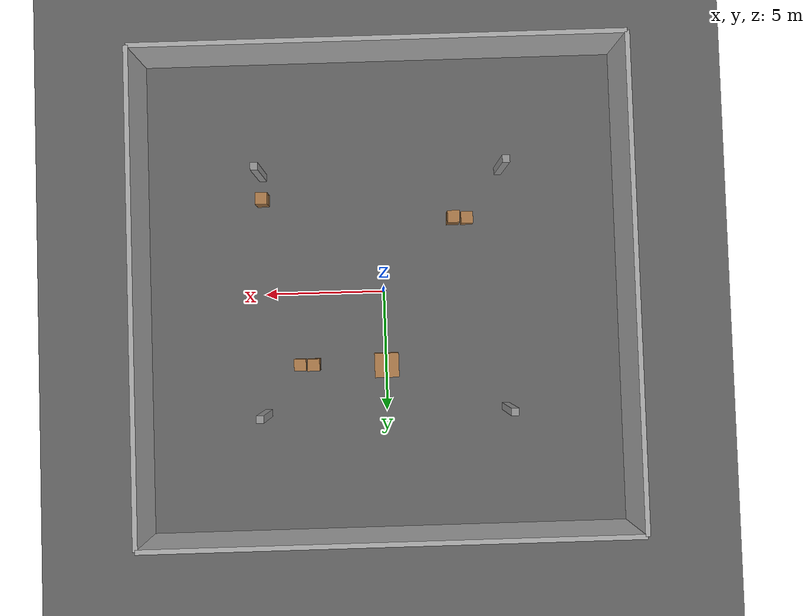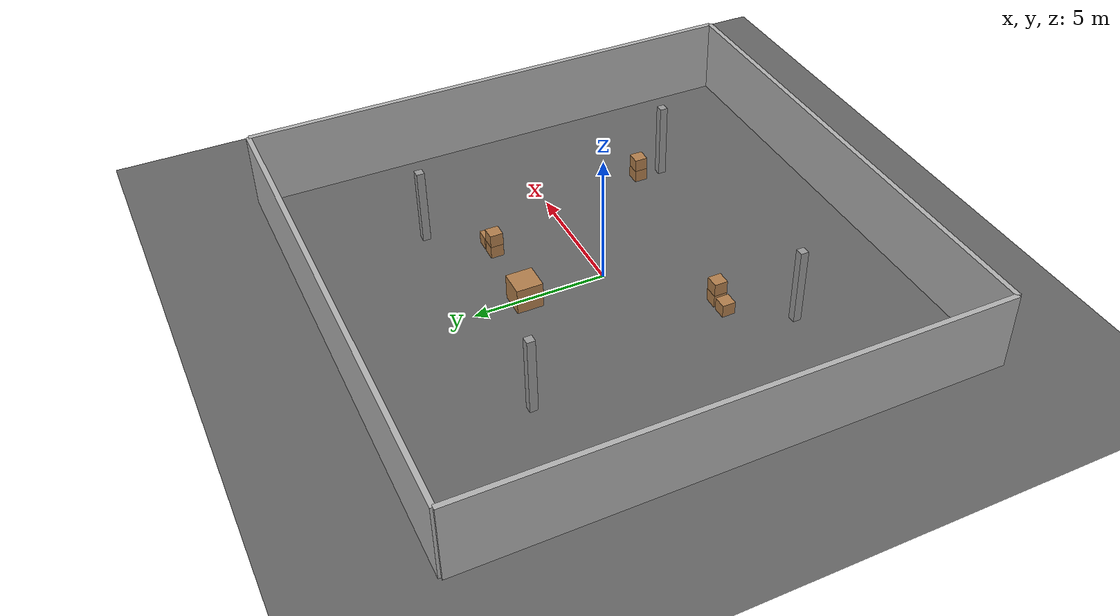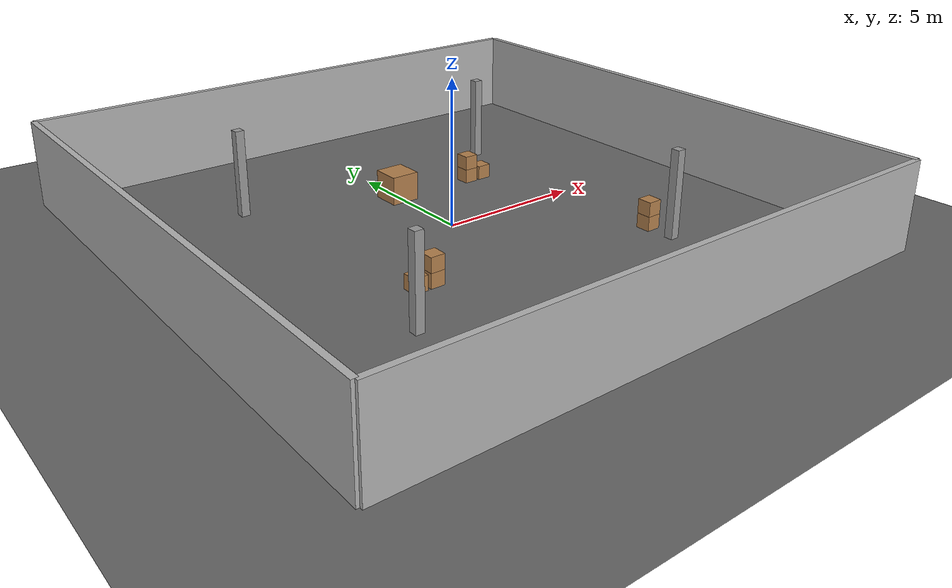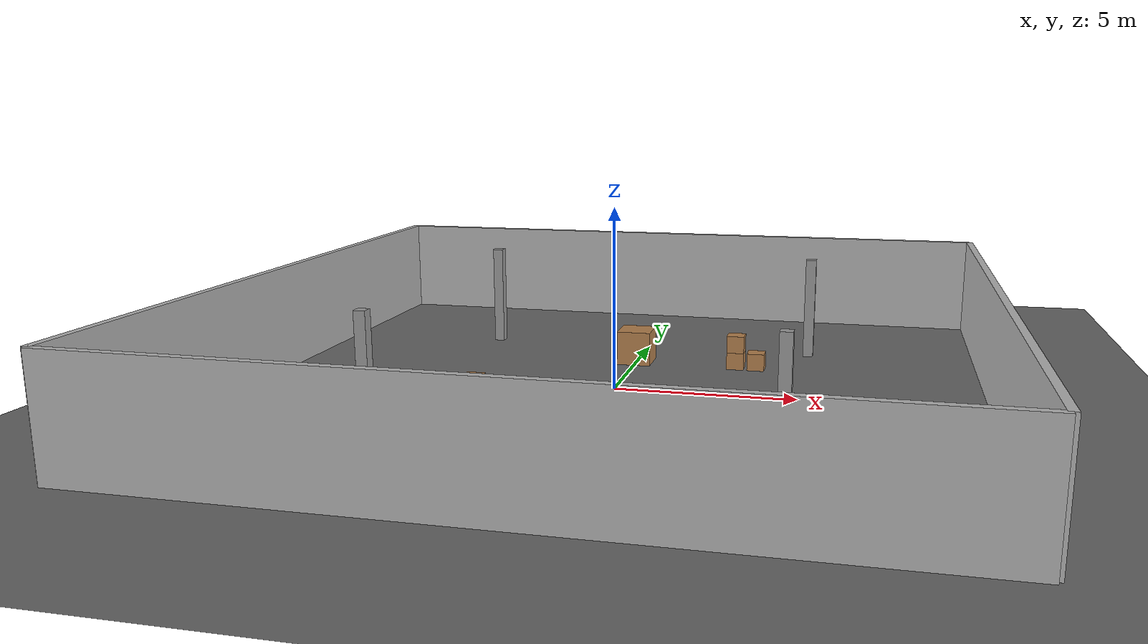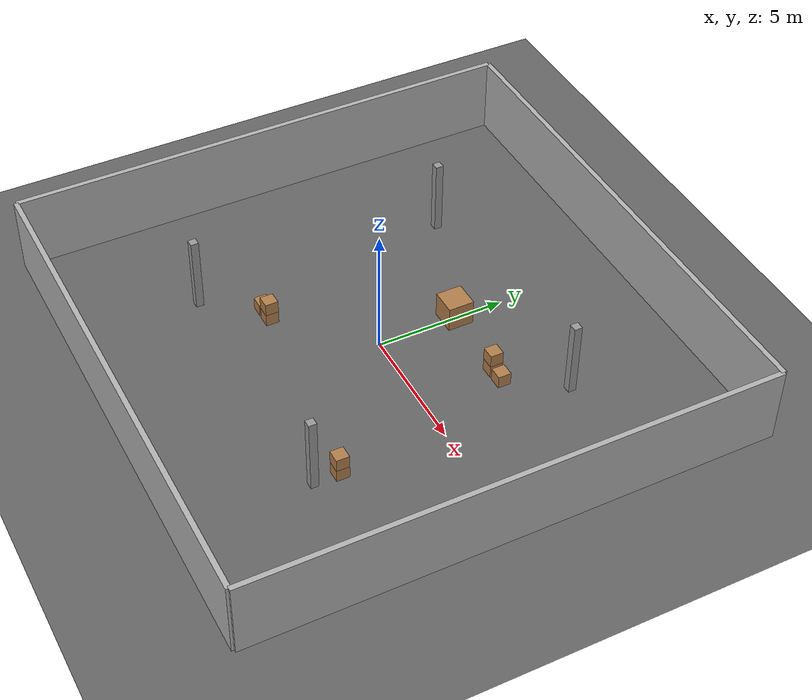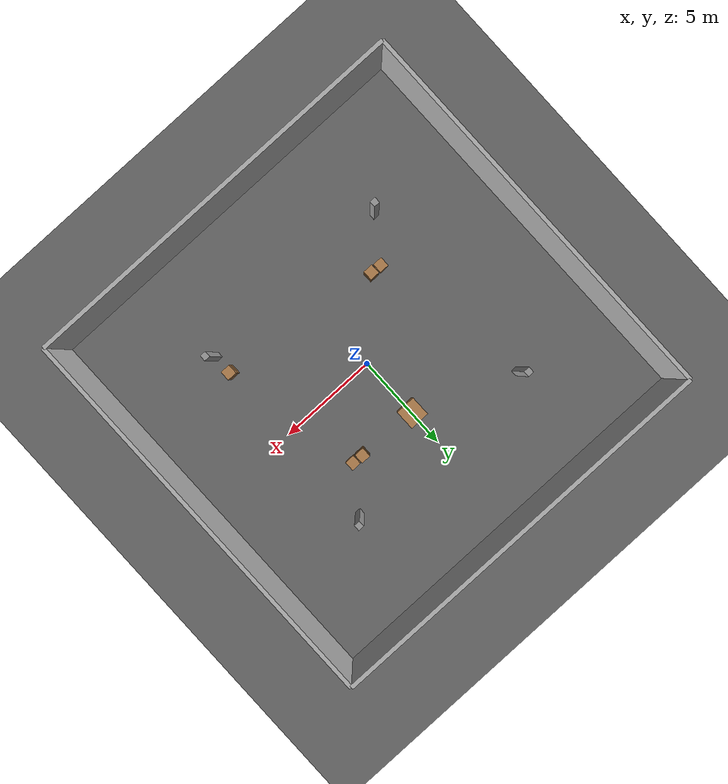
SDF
<sdf version="1.10">
 <world name="empty">
  <physics name="1ms" type="ignored">
   <max_step_size>0.001</max_step_size>
   <real_time_factor>1</real_time_factor>
   <real_time_update_rate>1000</real_time_update_rate>
  </physics>
  <plugin name="gz::sim::systems::Physics" filename="gz-sim-physics-system"/>
  <plugin name="gz::sim::systems::UserCommands" filename="gz-sim-user-commands-system"/>
  <plugin name="gz::sim::systems::SceneBroadcaster" filename="gz-sim-scene-broadcaster-system"/>
  <plugin name="gz::sim::systems::Contact" filename="gz-sim-contact-system"/>
  <plugin name="gz::sim::systems::Imu" filename="gz-sim-imu-system"/>
  <plugin name="gz::sim::systems::Sensors" filename="gz-sim-sensors-system">
   <render_engine>ogre2</render_engine>
  </plugin>
  <gravity>0 0 -9.8000000000000007</gravity>
  <magnetic_field>5.5644999999999998e-06 2.2875799999999999e-05 -4.2388400000000002e-05</magnetic_field>
  <atmosphere type="adiabatic"/>
  <scene><ambient>0.3 0.3 0.3 1</ambient><background>0.2 0.2 0.2 1</background><shadows>true</shadows></scene>
  <model name="ground_plane">
   <static>true</static>
   <link name="link">
    <collision name="collision">
     <geometry><plane><normal>0 0 1</normal><size>100 100</size></plane></geometry>
    </collision>
    <visual name="visual">
     <geometry><plane><normal>0 0 1</normal><size>100 100</size></plane></geometry>
     <material>
      <ambient>0.3 0.3 0.3 1</ambient>
      <diffuse>0.4 0.4 0.4 1</diffuse>
      <specular>0.1 0.1 0.1 1</specular>
     </material>
    </visual>
    <inertial>
     <mass>1</mass>
     <inertia><ixx>1</ixx><ixy>0</ixy><ixz>0</ixz><iyy>1</iyy><iyz>0</iyz><izz>1</izz></inertia>
    </inertial>
   </link>
  </model>
  <model name="box">
   <pose>-0.031455499999999997 3.0999699999999999 0.5 -5.5356599999999999e-09 -2.4914500000000026e-09 0.0051236299999999979</pose>
   <link name="box_link">
    <inertial>
     <inertia><ixx>0.16666</ixx><ixy>0</ixy><ixz>0</ixz><iyy>0.16666</iyy><iyz>0</iyz><izz>0.16666</izz></inertia>
     <mass>1</mass>
    </inertial>
    <collision name="box_collision"><geometry><box><size>1 1 1</size></box></geometry></collision>
    <visual name="box_visual">
     <geometry><box><size>1 1 1</size></box></geometry>
     <material>
      <ambient>0.6 0.4 0.2 1</ambient>
      <diffuse>0.7 0.5 0.3 1</diffuse>
      <specular>1 1 1 1</specular>
     </material>
    </visual>
   </link>
   <static>false</static>
  </model>
  <model name="wall_north">
   <static>true</static>
   <link name="link">
    <pose>0 10 1.5 0 0 0</pose>
    <collision name="collision"><geometry><box><size>20 0.2 3</size></box></geometry></collision>
    <visual name="visual">
     <geometry><box><size>20 0.2 3</size></box></geometry>
     <material><ambient>0.6 0.6 0.6 1</ambient><diffuse>0.7 0.7 0.7 1</diffuse></material>
    </visual>
   </link>
  </model>
  <model name="wall_south">
   <static>true</static>
   <link name="link">
    <pose>0 -10 1.5 0 0 0</pose>
    <collision name="collision"><geometry><box><size>20 0.2 3</size></box></geometry></collision>
    <visual name="visual">
     <geometry><box><size>20 0.2 3</size></box></geometry>
     <material><ambient>0.6 0.6 0.6 1</ambient><diffuse>0.7 0.7 0.7 1</diffuse></material>
    </visual>
   </link>
  </model>
  <model name="wall_east">
   <static>true</static>
   <link name="link">
    <pose>10 0 1.5 0 0 0</pose>
    <collision name="collision"><geometry><box><size>0.2 20 3</size></box></geometry></collision>
    <visual name="visual">
     <geometry><box><size>0.2 20 3</size></box></geometry>
     <material><ambient>0.6 0.6 0.6 1</ambient><diffuse>0.7 0.7 0.7 1</diffuse></material>
    </visual>
   </link>
  </model>
  <model name="wall_west">
   <static>true</static>
   <link name="link">
    <pose>-10 0 1.5 0 0 0</pose>
    <collision name="collision"><geometry><box><size>0.2 20 3</size></box></geometry></collision>
    <visual name="visual">
     <geometry><box><size>0.2 20 3</size></box></geometry>
     <material><ambient>0.6 0.6 0.6 1</ambient><diffuse>0.7 0.7 0.7 1</diffuse></material>
    </visual>
   </link>
  </model>
  <model name="cbox1">
   <static>true</static>
   <link name="link">
    <collision name="collision"><geometry><box><size>0.5 0.5 0.5</size></box></geometry></collision>
    <visual name="visual">
     <geometry><box><size>0.5 0.5 0.5</size></box></geometry>
     <material><ambient>0.6 0.4 0.2 1</ambient><diffuse>0.7 0.5 0.3 1</diffuse></material>
    </visual>
   </link>
   <pose>3 3 0.25 0 0 0</pose>
  </model>
  <model name="cbox2">
   <static>true</static>
   <link name="link">
    <collision name="collision"><geometry><box><size>0.5 0.5 0.5</size></box></geometry></collision>
    <visual name="visual">
     <geometry><box><size>0.5 0.5 0.5</size></box></geometry>
     <material><ambient>0.6 0.4 0.2 1</ambient><diffuse>0.7 0.5 0.3 1</diffuse></material>
    </visual>
   </link>
   <pose>3 3 0.75 0 0 0</pose>
  </model>
  <model name="cbox3">
   <static>true</static>
   <link name="link">
    <collision name="collision"><geometry><box><size>0.5 0.5 0.5</size></box></geometry></collision>
    <visual name="visual">
     <geometry><box><size>0.5 0.5 0.5</size></box></geometry>
     <material><ambient>0.6 0.4 0.2 1</ambient><diffuse>0.7 0.5 0.3 1</diffuse></material>
    </visual>
   </link>
   <pose>3.6 3 0.25 0 0 0</pose>
  </model>
  <model name="cbox4">
   <static>true</static>
   <link name="link">
    <collision name="collision"><geometry><box><size>0.5 0.5 0.5</size></box></geometry></collision>
    <visual name="visual">
     <geometry><box><size>0.5 0.5 0.5</size></box></geometry>
     <material><ambient>0.6 0.4 0.2 1</ambient><diffuse>0.7 0.5 0.3 1</diffuse></material>
    </visual>
   </link>
   <pose>-3 -3 0.25 0 0 0</pose>
  </model>
  <model name="cbox5">
   <static>true</static>
   <link name="link">
    <collision name="collision"><geometry><box><size>0.5 0.5 0.5</size></box></geometry></collision>
    <visual name="visual">
     <geometry><box><size>0.5 0.5 0.5</size></box></geometry>
     <material><ambient>0.6 0.4 0.2 1</ambient><diffuse>0.7 0.5 0.3 1</diffuse></material>
    </visual>
   </link>
   <pose>-3 -3 0.75 0 0 0</pose>
  </model>
  <model name="cbox6">
   <static>true</static>
   <link name="link">
    <collision name="collision"><geometry><box><size>0.5 0.5 0.5</size></box></geometry></collision>
    <visual name="visual">
     <geometry><box><size>0.5 0.5 0.5</size></box></geometry>
     <material><ambient>0.6 0.4 0.2 1</ambient><diffuse>0.7 0.5 0.3 1</diffuse></material>
    </visual>
   </link>
   <pose>-3.6 -3 0.25 0 0 0</pose>
  </model>
  <model name="cbox7">
   <static>true</static>
   <link name="link">
    <collision name="collision"><geometry><box><size>0.5 0.5 0.5</size></box></geometry></collision>
    <visual name="visual">
     <geometry><box><size>0.5 0.5 0.5</size></box></geometry>
     <material><ambient>0.6 0.4 0.2 1</ambient><diffuse>0.7 0.5 0.3 1</diffuse></material>
    </visual>
   </link>
   <pose>5 -4 0.25 0 0 0</pose>
  </model>
  <model name="cbox8">
   <static>true</static>
   <link name="link">
    <collision name="collision"><geometry><box><size>0.5 0.5 0.5</size></box></geometry></collision>
    <visual name="visual">
     <geometry><box><size>0.5 0.5 0.5</size></box></geometry>
     <material><ambient>0.6 0.4 0.2 1</ambient><diffuse>0.7 0.5 0.3 1</diffuse></material>
    </visual>
   </link>
   <pose>5 -4 0.75 0 0 0</pose>
  </model>
  <model name="pillar1">
   <static>true</static>
   <link name="link">
    <collision name="collision"><geometry><box><size>0.3 0.3 3</size></box></geometry></collision>
    <visual name="visual">
     <geometry><box><size>0.3 0.3 3</size></box></geometry>
     <material><ambient>0.5 0.5 0.5 1</ambient><diffuse>0.6 0.6 0.6 1</diffuse></material>
    </visual>
   </link>
   <pose>5 5 1.5 0 0 0</pose>
  </model>
  <model name="pillar2">
   <static>true</static>
   <link name="link">
    <collision name="collision"><geometry><box><size>0.3 0.3 3</size></box></geometry></collision>
    <visual name="visual">
     <geometry><box><size>0.3 0.3 3</size></box></geometry>
     <material><ambient>0.5 0.5 0.5 1</ambient><diffuse>0.6 0.6 0.6 1</diffuse></material>
    </visual>
   </link>
   <pose>-5 5 1.5 0 0 0</pose>
  </model>
  <model name="pillar3">
   <static>true</static>
   <link name="link">
    <collision name="collision"><geometry><box><size>0.3 0.3 3</size></box></geometry></collision>
    <visual name="visual">
     <geometry><box><size>0.3 0.3 3</size></box></geometry>
     <material><ambient>0.5 0.5 0.5 1</ambient><diffuse>0.6 0.6 0.6 1</diffuse></material>
    </visual>
   </link>
   <pose>5 -5 1.5 0 0 0</pose>
  </model>
  <model name="pillar4">
   <static>true</static>
   <link name="link">
    <collision name="collision"><geometry><box><size>0.3 0.3 3</size></box></geometry></collision>
    <visual name="visual">
     <geometry><box><size>0.3 0.3 3</size></box></geometry>
     <material><ambient>0.5 0.5 0.5 1</ambient><diffuse>0.6 0.6 0.6 1</diffuse></material>
    </visual>
   </link>
   <pose>-5 -5 1.5 0 0 0</pose>
  </model>
  <light name="ceiling_light_1" type="point">
   <pose>0 0 2.8 0 0 0</pose>
   <diffuse>1 1 0.9 1</diffuse>
   <specular>0.3 0.3 0.3 1</specular>
   <attenuation>
    <range>15</range>
    <constant>0.3</constant>
    <linear>0.01</linear>
    <quadratic>0.001</quadratic>
   </attenuation>
   <cast_shadows>false</cast_shadows>
  </light>
  <light name="ceiling_light_2" type="point">
   <pose>5 5 2.8 0 0 0</pose>
   <diffuse>1 1 0.9 1</diffuse>
   <specular>0.3 0.3 0.3 1</specular>
   <attenuation>
    <range>15</range>
    <constant>0.3</constant>
    <linear>0.01</linear>
    <quadratic>0.001</quadratic>
   </attenuation>
   <cast_shadows>false</cast_shadows>
  </light>
  <light name="ceiling_light_3" type="point">
   <pose>-5 -5 2.8 0 0 0</pose>
   <diffuse>1 1 0.9 1</diffuse>
   <specular>0.3 0.3 0.3 1</specular>
   <attenuation>
    <range>15</range>
    <constant>0.3</constant>
    <linear>0.01</linear>
    <quadratic>0.001</quadratic>
   </attenuation>
   <cast_shadows>false</cast_shadows>
  </light>
  <light name="ceiling_light_4" type="point">
   <pose>5 -5 2.8 0 0 0</pose>
   <diffuse>1 1 0.9 1</diffuse>
   <specular>0.3 0.3 0.3 1</specular>
   <attenuation>
    <range>15</range>
    <constant>0.3</constant>
    <linear>0.01</linear>
    <quadratic>0.001</quadratic>
   </attenuation>
   <cast_shadows>false</cast_shadows>
  </light>
  <light name="ceiling_light_5" type="point">
   <pose>-5 5 2.8 0 0 0</pose>
   <diffuse>1 1 0.9 1</diffuse>
   <specular>0.3 0.3 0.3 1</specular>
   <attenuation>
    <range>15</range>
    <constant>0.3</constant>
    <linear>0.01</linear>
    <quadratic>0.001</quadratic>
   </attenuation>
   <cast_shadows>false</cast_shadows>
  </light>
  <light name="sun" type="directional">
   <pose>0 0 10 0 0 0</pose>
   <intensity>0.4</intensity>
   <direction>-0.5 0.1 -0.9</direction>
   <diffuse>0.6 0.6 0.6 1</diffuse>
   <specular>0.2 0.2 0.2 1</specular>
   <attenuation>
    <range>1000</range>
    <linear>0.01</linear>
    <constant>0.9</constant>
    <quadratic>0.001</quadratic>
   </attenuation>
   <spot><inner_angle>0</inner_angle><outer_angle>0</outer_angle><falloff>0</falloff></spot>
  </light>
 </world>
</sdf>
